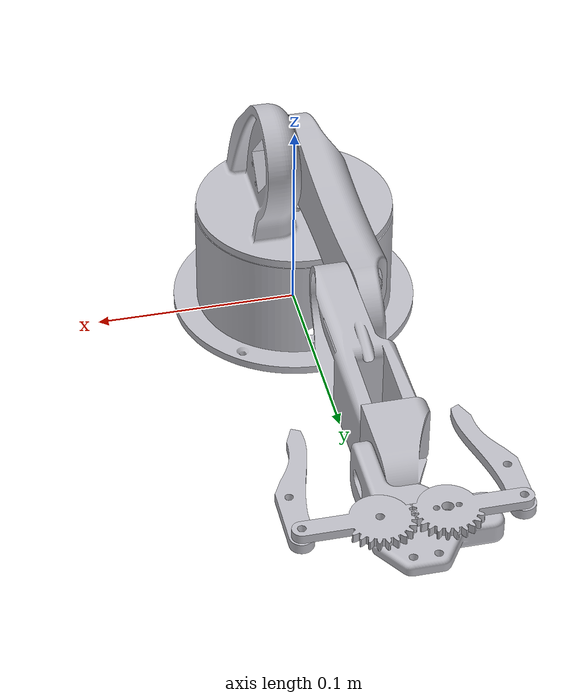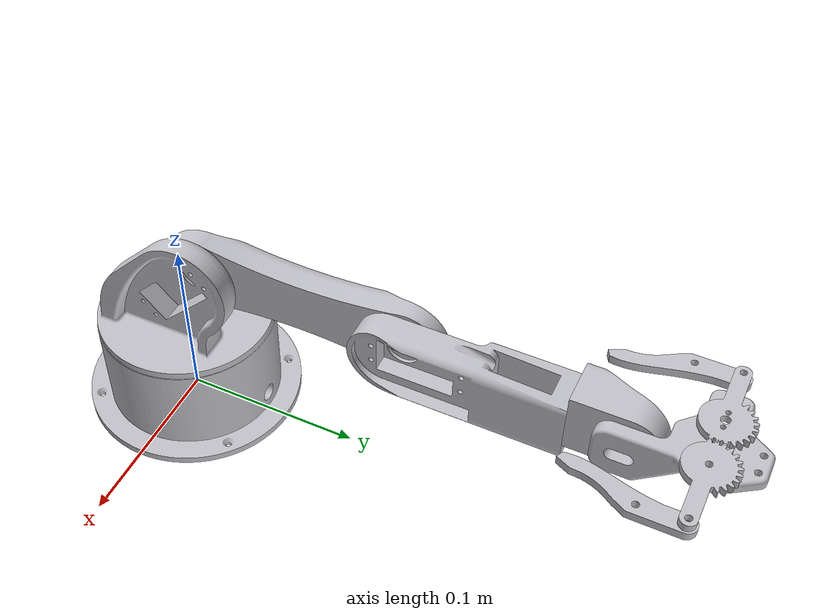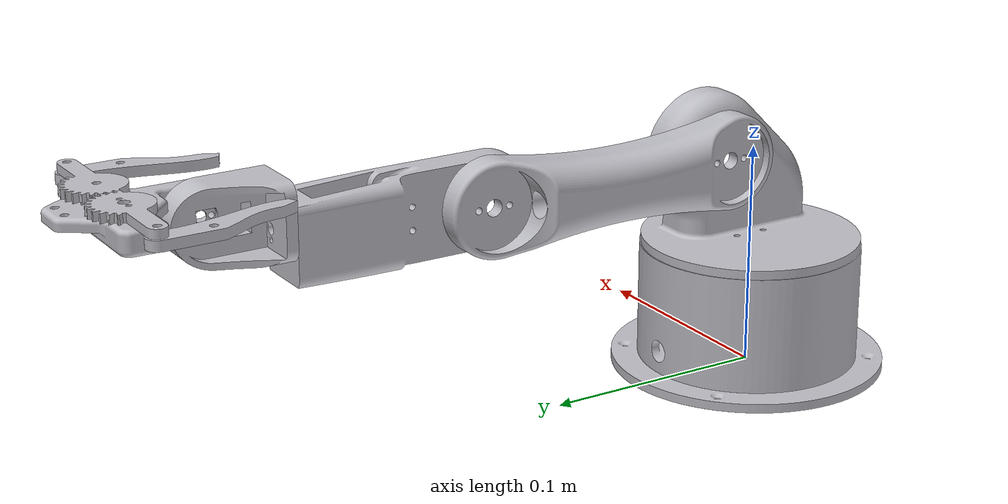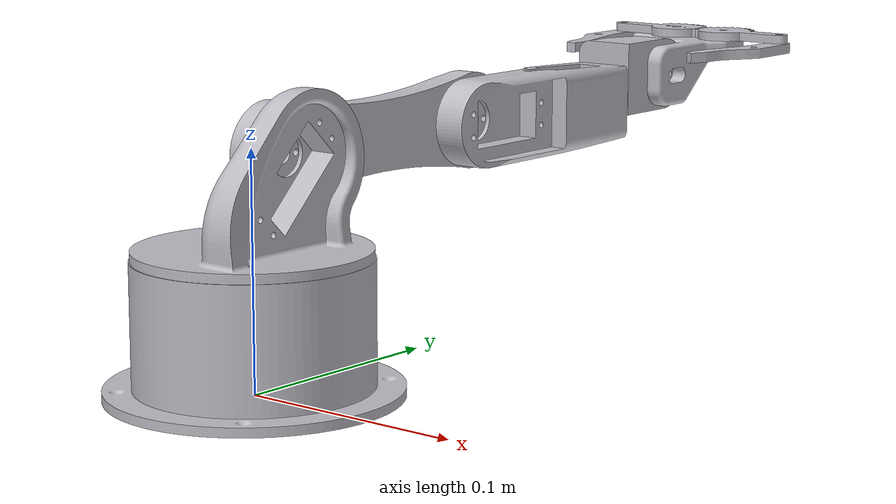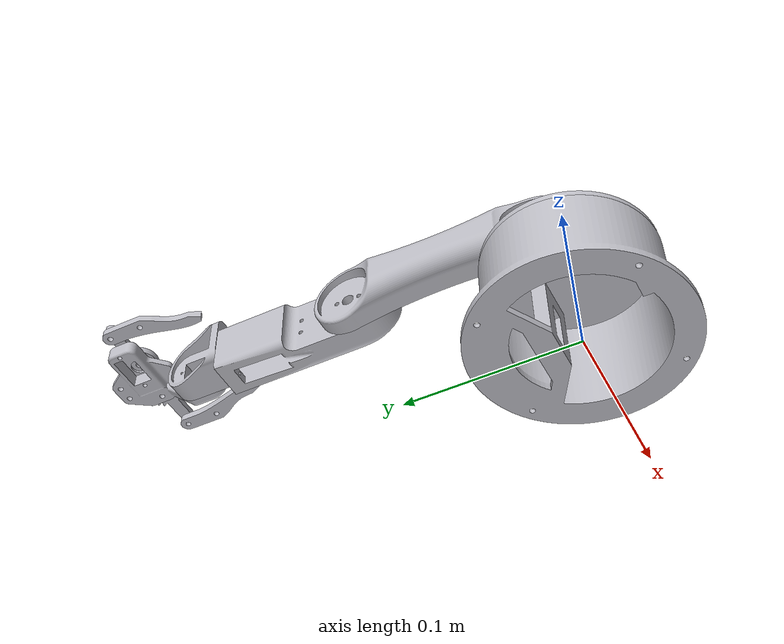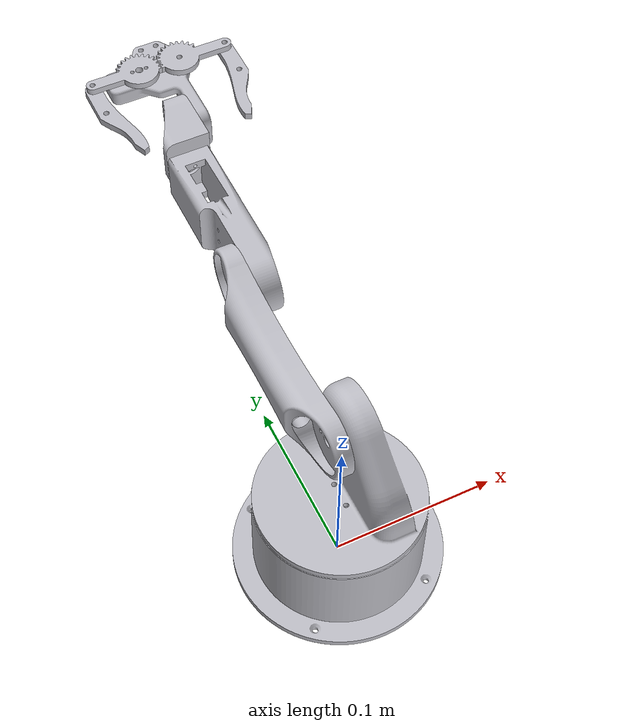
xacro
<?xml version="1.0"?>
<robot xmlns:xacro="http://www.ros.org/wiki/xacro" name="robotic_arm">
    <xacro:arg name="initial_positions_file" default="initial_positions.yaml" />

    <!-- Import robotic_arm urdf file -->
    <xacro:include filename="$(find robotic_arm_description)/urdf/robotic_arm_moveit.xacro" />

    <!-- Import control_xacro -->
    <xacro:include filename="robotic_arm.ros2_control.xacro" />

    <xacro:robotic_arm_ros2_control name="FakeSystem" initial_positions_file="$(arg initial_positions_file)"/>

</robot>

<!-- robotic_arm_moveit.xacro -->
<robot name="robotic_arm" xmlns:xacro="http://www.ros.org/wiki/xacro">

<xacro:include filename="$(find robotic_arm_description)/urdf/materials.xacro" />
<xacro:include filename="$(find robotic_arm_description)/urdf/robotic_arm.trans" />
<xacro:include filename="$(find robotic_arm_description)/urdf/robotic_arm.gazebo" />

<link name="base_link">
  <inertial>
    <origin xyz="-2.007054709924346e-15 0.0010969724106877298 0.022106105129284122" rpy="0 0 0"/>
    <mass value="0.7425694933685707"/>
    <inertia ixx="0.001058" iyy="0.001012" izz="0.001614" ixy="-0.0" iyz="3e-05" ixz="-0.0"/>
  </inertial>
  <visual>
    <origin xyz="0 0 0" rpy="0 0 0"/>
    <geometry>
      <mesh filename="package://robotic_arm_description/meshes/base_link.stl" scale="0.001 0.001 0.001"/>
    </geometry>
    <material name="silver"/>
  </visual>
  <collision>
    <origin xyz="0 0 0" rpy="0 0 0"/>
    <geometry>
      <mesh filename="package://robotic_arm_description/meshes/base_link.stl" scale="0.001 0.001 0.001"/>
    </geometry>
  </collision>
</link>

<link name="link_1_1">
  <inertial>
    <origin xyz="0.007494556419068631 0.0014295742804474971 0.019382969802823384" rpy="0 0 0"/>
    <mass value="0.5781349224169935"/>
    <inertia ixx="0.001" iyy="0.001" izz="0.001" ixy="0" iyz="0" ixz="0"/>
  </inertial>
  <visual>
    <origin xyz="-0.0 -0.0 -0.056" rpy="0 0 0"/>
    <geometry>
      <mesh filename="package://robotic_arm_description/meshes/link_1_1.stl" scale="0.001 0.001 0.001"/>
    </geometry>
    <material name="silver"/>
  </visual>
  <collision>
    <origin xyz="-0.0 -0.0 -0.056" rpy="0 0 0"/>
    <geometry>
      <mesh filename="package://robotic_arm_description/meshes/link_1_1.stl" scale="0.001 0.001 0.001"/>
    </geometry>
  </collision>
</link>

<link name="link_2_1">
  <inertial>
    <origin xyz="-0.007771879429282643 0.06000016712237793 -1.9522901933965997e-07" rpy="0 0 0"/>
    <mass value="0.5029413662942186"/>
    <inertia ixx="0.001" iyy="0.001" izz="0.001" ixy="0.0" iyz="0.0" ixz="0.0"/>
  </inertial>
  <visual>
    <origin xyz="-0.004 -0.01391 -0.09628" rpy="0 0 0"/>
    <geometry>
      <mesh filename="package://robotic_arm_description/meshes/link_2_1.stl" scale="0.001 0.001 0.001"/>
    </geometry>
    <material name="silver"/>
  </visual>
  <collision>
    <origin xyz="-0.004 -0.01391 -0.09628" rpy="0 0 0"/>
    <geometry>
      <mesh filename="package://robotic_arm_description/meshes/link_2_1.stl" scale="0.001 0.001 0.001"/>
    </geometry>
  </collision>
</link>

<link name="link_3_1">
  <inertial>
    <origin xyz="0.005719881503362506 0.04171160415245509 -3.141365007224006e-05" rpy="0 0 0"/>
    <mass value="0.36971477325871516"/>
    <inertia ixx="0.001" iyy="0.001" izz="0.001" ixy="0" iyz="0" ixz="0"/>
  </inertial>
  <visual>
    <origin xyz="-0.004 -0.13391 -0.09628" rpy="0 0 0"/>
    <geometry>
      <mesh filename="package://robotic_arm_description/meshes/link_3_1.stl" scale="0.001 0.001 0.001"/>
    </geometry>
    <material name="silver"/>
  </visual>
  <collision>
    <origin xyz="-0.004 -0.13391 -0.09628" rpy="0 0 0"/>
    <geometry>
      <mesh filename="package://robotic_arm_description/meshes/link_3_1.stl" scale="0.001 0.001 0.001"/>
    </geometry>
  </collision>
</link>

<link name="link_4_1">
  <inertial>
    <origin xyz="0.00527095562470308 0.01780796309871907 0.005045904090633033" rpy="0 0 0"/>
    <mass value="0.12929221233201882"/>
    <inertia ixx="0.001" iyy="0.001" izz="0.001" ixy="0" iyz="0" ixz="0"/>
  </inertial>
  <visual>
    <origin xyz="-0.0095 -0.22366 -0.10158" rpy="0 0 0"/>
    <geometry>
      <mesh filename="package://robotic_arm_description/meshes/link_4_1.stl" scale="0.001 0.001 0.001"/>
    </geometry>
    <material name="silver"/>
  </visual>
  <collision>
    <origin xyz="-0.0095 -0.22366 -0.10158" rpy="0 0 0"/>
    <geometry>
      <mesh filename="package://robotic_arm_description/meshes/link_4_1.stl" scale="0.001 0.001 0.001"/>
    </geometry>
  </collision>
</link>

<link name="Gripper_Base_1">
  <inertial>
    <origin xyz="-0.004157588146918339 0.024927874526774807 0.006440324757844368" rpy="0 0 0"/>
    <mass value="0.12591882008563557"/>
    <inertia ixx="0.001" iyy="0.001" izz="0.001" ixy="0" iyz="0" ixz="0"/>
  </inertial>
  <visual>
    <origin xyz="-0.0235 -0.25166 -0.10658" rpy="0 0 0"/>
    <geometry>
      <mesh filename="package://robotic_arm_description/meshes/Gripper_Base_1.stl" scale="0.001 0.001 0.001"/>
    </geometry>
    <material name="silver"/>
  </visual>
  <collision>
    <origin xyz="-0.0235 -0.25166 -0.10658" rpy="0 0 0"/>
    <geometry>
      <mesh filename="package://robotic_arm_description/meshes/Gripper_Base_1.stl" scale="0.001 0.001 0.001"/>
    </geometry>
  </collision>
</link>

<link name="gear_L_1">
  <inertial>
    <origin xyz="-0.005551202562301736 0.0005817157119462624 0.002000000000000446" rpy="0 0 0"/>
    <mass value="0.1"/>
    <inertia ixx="0.001" iyy="0.001" izz="0.001" ixy="0" iyz="0" ixz="0"/>
  </inertial>
  <visual>
    <origin xyz="-0.0056 -0.28966 -0.12058" rpy="0 0 0"/>
    <geometry>
      <mesh filename="package://robotic_arm_description/meshes/gear_L_1.stl" scale="0.001 0.001 0.001"/>
    </geometry>
    <material name="silver"/>
  </visual>
  <collision>
    <origin xyz="-0.0056 -0.28966 -0.12058" rpy="0 0 0"/>
    <geometry>
      <box size="0.001 0.001 0.001"/>
    </geometry>
  </collision>
</link>

<link name="gear_R_1">
  <inertial>
    <origin xyz="0.005391711091485479 0.0005650024514501917 0.0020000000000002516" rpy="0 0 0"/>
    <mass value="0.1"/>
    <inertia ixx="0.001" iyy="0.001" izz="0.001" ixy="0.0" iyz="0.0" ixz="0.0"/>
  </inertial>
  <visual>
    <origin xyz="-0.0325 -0.28966 -0.12058" rpy="0 0 0"/>
    <geometry>
      <mesh filename="package://robotic_arm_description/meshes/gear_R_1.stl" scale="0.001 0.001 0.001"/>
    </geometry>
    <material name="silver"/>
  </visual>
  <collision>
    <origin xyz="-0.0325 -0.28966 -0.12058" rpy="0 0 0"/>
    <geometry>
      <box size="0.001 0.001 0.001"/>
    </geometry>
  </collision>
</link>

<link name="Gripper_L_1">
  <inertial>
    <origin xyz="0.0033671378530476595 -0.025526019080591766 -0.0022499999999988085" rpy="0 0 0"/>
    <mass value="0.1"/>
    <inertia ixx="0.001" iyy="0.001" izz="0.001" ixy="0" iyz="0" ixz="0"/>
  </inertial>
  <visual>
    <origin xyz="0.02515 -0.28966 -0.12058" rpy="0 0 0"/>
    <geometry>
      <mesh filename="package://robotic_arm_description/meshes/Gripper_L_1.stl" scale="0.001 0.001 0.001"/>
    </geometry>
    <material name="silver"/>
  </visual>
  <collision>
    <origin xyz="0.02515 -0.28966 -0.12058" rpy="0 0 0"/>
    <geometry>
      <box size="0.001 0.001 0.001"/>
    </geometry>
  </collision>
</link>

<link name="Gripper_R_1">
  <inertial>
    <origin xyz="-0.003367137853050553 -0.02552601908058838 -0.002249999999999752" rpy="0 0 0"/>
    <mass value="0.1"/>
    <inertia ixx="0.001" iyy="0.001" izz="0.001" ixy="0" iyz="0" ixz="0"/>
  </inertial>
  <visual>
    <origin xyz="-0.06325 -0.28966 -0.12058" rpy="0 0 0"/>
    <geometry>
      <mesh filename="package://robotic_arm_description/meshes/Gripper_R_1.stl" scale="0.001 0.001 0.001"/>
    </geometry>
    <material name="silver"/>
  </visual>
  <collision>
    <origin xyz="-0.06325 -0.28966 -0.12058" rpy="0 0 0"/>
    <geometry>
      <box size="0.001 0.001 0.001"/>
    </geometry>
  </collision>
</link>

<joint name="Revolute 1" type="revolute">
  <origin xyz="0.0 0.0 0.056" rpy="0 0 0"/>
  <parent link="base_link"/>
  <child link="link_1_1"/>
  <axis xyz="0.0 0.0 1.0"/>
  <limit upper="5.934119" lower="0.0" effort="100" velocity="100"/>
</joint>

<joint name="Revolute 2" type="revolute">
  <origin xyz="0.004 0.01391 0.04028" rpy="0 0 0"/>
  <parent link="link_1_1"/>
  <child link="link_2_1"/>
  <axis xyz="1.0 0.0 0.0"/>
  <limit upper="3.403392" lower="-0.436332" effort="100" velocity="100"/>
</joint>

<joint name="Revolute 3" type="revolute">
  <origin xyz="0.0 0.12 0.0" rpy="0 0 0"/>
  <parent link="link_2_1"/>
  <child link="link_3_1"/>
  <axis xyz="-1.0 0.0 -0.0"/>
  <limit upper="2.356194" lower="-2.443461" effort="100" velocity="100"/>
</joint>

<joint name="Revolute 4" type="revolute">
  <origin xyz="0.0055 0.08975 0.0053" rpy="0 0 0"/>
  <parent link="link_3_1"/>
  <child link="link_4_1"/>
  <axis xyz="-0.0 1.0 0.0"/>
  <limit upper="6.108652" lower="0.0" effort="100" velocity="100"/>
</joint>

<joint name="Revolute 5" type="revolute">
  <origin xyz="0.014 0.028 0.005" rpy="0 0 0"/>
  <parent link="link_4_1"/>
  <child link="Gripper_Base_1"/>
  <axis xyz="-1.0 -0.0 0.0"/>
  <limit upper="2.268928" lower="-1.919862" effort="100" velocity="100"/>
</joint>

<joint name="Revolute 7" type="revolute">
  <origin xyz="-0.0179 0.038 0.014" rpy="0 0 0"/>
  <parent link="Gripper_Base_1"/>
  <child link="gear_L_1"/>
  <axis xyz="0.0 -0.0 1.0"/>
  <limit upper="0.087266" lower="-1.570796" effort="100" velocity="100"/>
</joint>

<joint name="Revolute 8" type="revolute">
  <origin xyz="0.009 0.038 0.014" rpy="0 0 0"/>
  <parent link="Gripper_Base_1"/>
  <child link="gear_R_1"/>
  <axis xyz="0.0 -0.0 1.0"/>
  <limit upper="1.570796" lower="-0.087266" effort="100" velocity="100"/>
  <mimic joint="Revolute 7" multiplier="-1.0" offset="0" />
</joint>

<joint name="Revolute 9" type="revolute">
  <origin xyz="-0.03075 0.0 0.0" rpy="0 0 0"/>
  <parent link="gear_L_1"/>
  <child link="Gripper_L_1"/>
  <axis xyz="-0.0 0.0 -1.0"/>
  <limit upper="6.28" lower="-6.28" effort="100" velocity="100"/>
</joint>

<joint name="Revolute 10" type="revolute">
  <origin xyz="0.03075 0.0 0.0" rpy="0 0 0"/>
  <parent link="gear_R_1"/>
  <child link="Gripper_R_1"/>
  <axis xyz="-0.0 -0.0 1.0"/>
  <limit upper="6.28" lower="-6.28" effort="100" velocity="100"/>
  <mimic joint="Revolute 9" multiplier="1.0" offset="0" />
</joint>

<ros2_control name="GazeboSystem" type="system">
    <hardware>
      <plugin>mock_components/GenericSystem</plugin>
    </hardware>

    <joint name="Revolute 1">
      <command_interface name="position"/>
      <state_interface name="position"/>
      <state_interface name="velocity"/>
    </joint>

    <joint name="Revolute 2">
      <command_interface name="position"/>
      <state_interface name="position"/>
      <state_interface name="velocity"/>
    </joint>

    <joint name="Revolute 3">
      <command_interface name="position"/>
      <state_interface name="position"/>
      <state_interface name="velocity"/>
    </joint>

    <joint name="Revolute 4">
      <command_interface name="position"/>
      <state_interface name="position"/>
      <state_interface name="velocity"/>
    </joint>

    <joint name="Revolute 5">
      <command_interface name="position"/>
      <state_interface name="position"/>
      <state_interface name="velocity"/>
    </joint>

     <joint name="Revolute 7">
      <command_interface name="position"/>
      <state_interface name="position"/>
      <state_interface name="velocity"/>
    </joint>

     <joint name="Revolute 8">
      <param name="mimic">Revolute 7</param>
      <param name="multiplier">-1.0</param>
      <command_interface name="position"/>
      <state_interface name="position"/>
      <state_interface name="velocity"/>
    </joint>

     <joint name="Revolute 9">
      <command_interface name="position"/>
      <state_interface name="position"/>
      <state_interface name="velocity"/>
    </joint>

      <joint name="Revolute 10">
      <param name="mimic">Revolute 9</param>
      <param name="multiplier">1.0</param>
      <command_interface name="position"/>
      <state_interface name="position"/>
      <state_interface name="velocity"/>
    </joint>

  </ros2_control>

  <gazebo>
    <plugin filename="libgazebo_ros2_control.so" name="gazebo_ros2_control">
      <parameters>$(find robotic_arm_description)/config/my_controllers.yaml</parameters>
    </plugin>
  </gazebo>
</robot>

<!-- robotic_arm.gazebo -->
<robot name="robotic_arm" xmlns:xacro="http://www.ros.org/wiki/xacro" >

<xacro:property name="body_color" value="Gazebo/Silver" />

<gazebo>
  <plugin name="control" filename="libgazebo_ros_control.so"/>
</gazebo>
<gazebo reference="base_link">
  <material>${body_color}</material>
  <mu1>0.2</mu1>
  <mu2>0.2</mu2>
  <self_collide>true</self_collide>
  <gravity>true</gravity>
</gazebo>

<gazebo reference="link_1_1">
  <material>${body_color}</material>
  <mu1>0.2</mu1>
  <mu2>0.2</mu2>
  <self_collide>true</self_collide>
</gazebo>

<gazebo reference="link_2_1">
  <material>${body_color}</material>
  <mu1>0.2</mu1>
  <mu2>0.2</mu2>
  <self_collide>true</self_collide>
</gazebo>

<gazebo reference="link_3_1">
  <material>${body_color}</material>
  <mu1>0.2</mu1>
  <mu2>0.2</mu2>
  <self_collide>true</self_collide>
</gazebo>

<gazebo reference="link_4_1">
  <material>${body_color}</material>
  <mu1>0.2</mu1>
  <mu2>0.2</mu2>
  <self_collide>true</self_collide>
</gazebo>

<gazebo reference="Gripper_Base_1">
  <material>${body_color}</material>
  <mu1>0.2</mu1>
  <mu2>0.2</mu2>
  <self_collide>true</self_collide>
</gazebo>

<gazebo reference="gear_L_1">
  <material>${body_color}</material>
  <mu1>0.2</mu1>
  <mu2>0.2</mu2>
  <self_collide>true</self_collide>
</gazebo>

<gazebo reference="gear_R_1">
  <material>${body_color}</material>
  <mu1>0.2</mu1>
  <mu2>0.2</mu2>
  <self_collide>true</self_collide>
</gazebo>

<gazebo reference="Gripper_L_1">
  <material>${body_color}</material>
  <mu1>0.2</mu1>
  <mu2>0.2</mu2>
  <self_collide>true</self_collide>
</gazebo>

<gazebo reference="Gripper_R_1">
  <material>${body_color}</material>
  <mu1>0.2</mu1>
  <mu2>0.2</mu2>
  <self_collide>true</self_collide>
</gazebo>

</robot>
